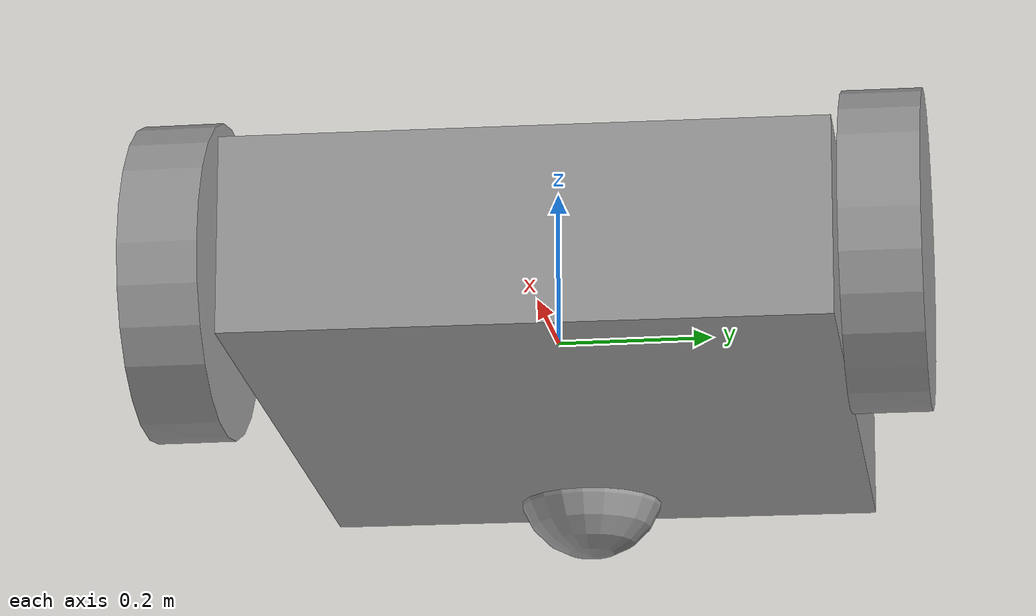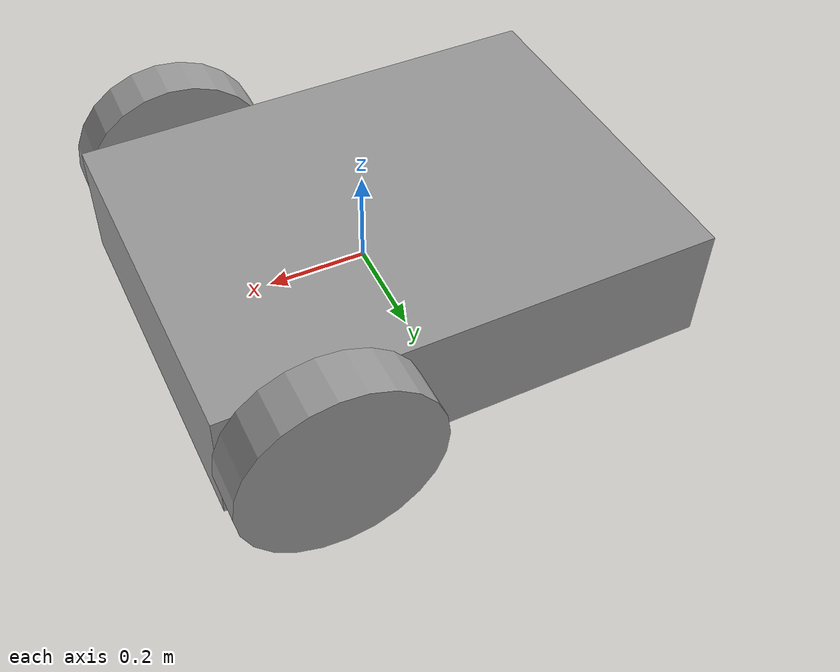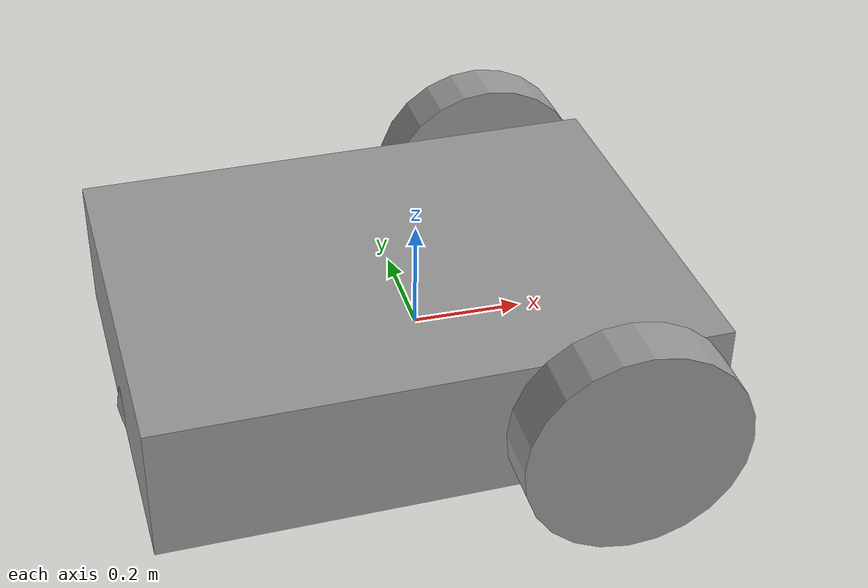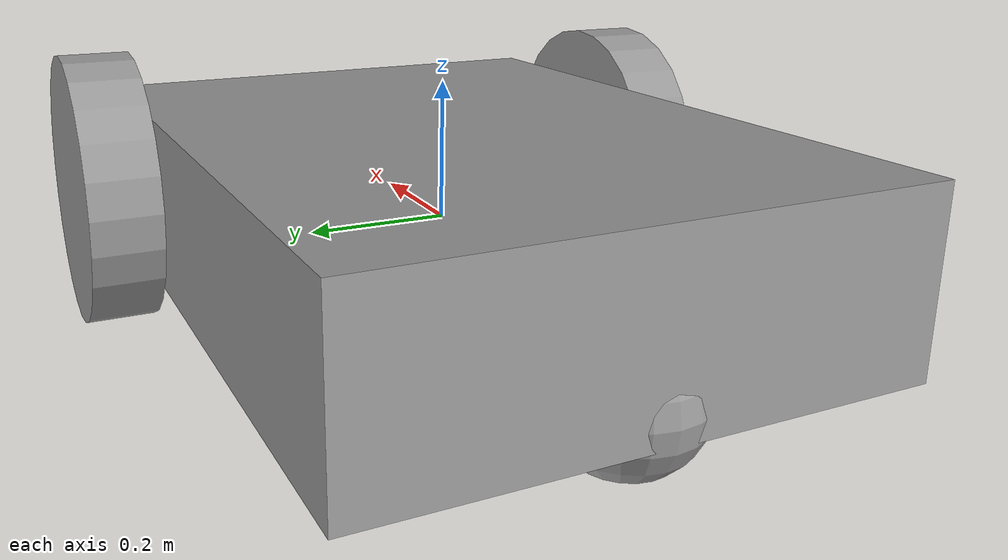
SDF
<?xml version='1.0'?>
<sdf version='1.6'>
  <model name='three_wheel_robot'>
    <link name='link_2'>
      <pose frame=''>-0.049314 0.004724 0.023129 0 -0 0.021569</pose>
      <inertial>
        <mass>1</mass>
        <inertia>
          <ixx>0.166667</ixx>
          <ixy>0</ixy>
          <ixz>0</ixz>
          <iyy>0.166667</iyy>
          <iyz>0</iyz>
          <izz>0.166667</izz>
        </inertia>
        <pose frame=''>0 0 0 0 -0 0</pose>
      </inertial>
      <gravity>1</gravity>
      <self_collide>0</self_collide>
      <kinematic>0</kinematic>
      <visual name='visual'>
        <pose frame=''>0 0 0 0 -0 0</pose>
        <geometry>
          <box>
            <size>1 0.75 0.25</size>
          </box>
        </geometry>
        <material>
          <lighting>1</lighting>
          <script>
            <uri>file://media/materials/scripts/gazebo.material</uri>
            <name>Gazebo/Grey</name>
          </script>
          <shader type='pixel'>
            <normal_map>__default__</normal_map>
          </shader>
          <ambient>0.3 0.3 0.3 1</ambient>
          <diffuse>0.7 0.7 0.7 1</diffuse>
          <specular>0.01 0.01 0.01 1</specular>
          <emissive>0 0 0 1</emissive>
        </material>
        <transparency>0</transparency>
        <cast_shadows>1</cast_shadows>
      </visual>
      <collision name='collision'>
        <laser_retro>0</laser_retro>
        <max_contacts>10</max_contacts>
        <pose frame=''>0 0 0 0 -0 0</pose>
        <geometry>
          <box>
            <size>1 0.75 0.25</size>
          </box>
        </geometry>
        <surface>
          <friction>
            <ode>
              <mu>1</mu>
              <mu2>1</mu2>
              <fdir1>0 0 0</fdir1>
              <slip1>0</slip1>
              <slip2>0</slip2>
            </ode>
            <torsional>
              <coefficient>1</coefficient>
              <patch_radius>0</patch_radius>
              <surface_radius>0</surface_radius>
              <use_patch_radius>1</use_patch_radius>
              <ode>
                <slip>0</slip>
              </ode>
            </torsional>
          </friction>
          <bounce>
            <restitution_coefficient>0</restitution_coefficient>
            <threshold>1e+06</threshold>
          </bounce>
          <contact>
            <collide_without_contact>0</collide_without_contact>
            <collide_without_contact_bitmask>1</collide_without_contact_bitmask>
            <collide_bitmask>1</collide_bitmask>
            <ode>
              <soft_cfm>0</soft_cfm>
              <soft_erp>0.2</soft_erp>
              <kp>1e+13</kp>
              <kd>1</kd>
              <max_vel>0.01</max_vel>
              <min_depth>0</min_depth>
            </ode>
            <bullet>
              <split_impulse>1</split_impulse>
              <split_impulse_penetration_threshold>-0.01</split_impulse_penetration_threshold>
              <soft_cfm>0</soft_cfm>
              <soft_erp>0.2</soft_erp>
              <kp>1e+13</kp>
              <kd>1</kd>
            </bullet>
          </contact>
        </surface>
      </collision>
    </link>
    <link name='link_3'>
      <pose frame=''>0.253169 0.443595 0.030612 1.55489 1.54692 3.14159</pose>
      <inertial>
        <mass>1</mass>
        <inertia>
          <ixx>0.145833</ixx>
          <ixy>0</ixy>
          <ixz>0</ixz>
          <iyy>0.145833</iyy>
          <iyz>0</iyz>
          <izz>0.125</izz>
        </inertia>
        <pose frame=''>0 0 0 0 -0 0</pose>
      </inertial>
      <gravity>1</gravity>
      <self_collide>0</self_collide>
      <kinematic>0</kinematic>
      <visual name='visual'>
        <pose frame=''>0 0 0 0 -0 0</pose>
        <geometry>
          <cylinder>
            <radius>0.2</radius>
            <length>0.1</length>
          </cylinder>
        </geometry>
        <material>
          <lighting>1</lighting>
          <script>
            <uri>file://media/materials/scripts/gazebo.material</uri>
            <name>Gazebo/Grey</name>
          </script>
          <shader type='pixel'>
            <normal_map>__default__</normal_map>
          </shader>
          <ambient>0.3 0.3 0.3 1</ambient>
          <diffuse>0.7 0.7 0.7 1</diffuse>
          <specular>0.01 0.01 0.01 1</specular>
          <emissive>0 0 0 1</emissive>
        </material>
        <transparency>0</transparency>
        <cast_shadows>1</cast_shadows>
      </visual>
      <collision name='collision'>
        <laser_retro>0</laser_retro>
        <max_contacts>10</max_contacts>
        <pose frame=''>0 0 0 0 -0 0</pose>
        <geometry>
          <cylinder>
            <radius>0.2</radius>
            <length>0.1</length>
          </cylinder>
        </geometry>
        <surface>
          <friction>
            <ode>
              <mu>1</mu>
              <mu2>1</mu2>
              <fdir1>0 0 0</fdir1>
              <slip1>0</slip1>
              <slip2>0</slip2>
            </ode>
            <torsional>
              <coefficient>1</coefficient>
              <patch_radius>0</patch_radius>
              <surface_radius>0</surface_radius>
              <use_patch_radius>1</use_patch_radius>
              <ode>
                <slip>0</slip>
              </ode>
            </torsional>
          </friction>
          <bounce>
            <restitution_coefficient>0</restitution_coefficient>
            <threshold>1e+06</threshold>
          </bounce>
          <contact>
            <collide_without_contact>0</collide_without_contact>
            <collide_without_contact_bitmask>1</collide_without_contact_bitmask>
            <collide_bitmask>1</collide_bitmask>
            <ode>
              <soft_cfm>0</soft_cfm>
              <soft_erp>0.2</soft_erp>
              <kp>1e+13</kp>
              <kd>1</kd>
              <max_vel>0.01</max_vel>
              <min_depth>0</min_depth>
            </ode>
            <bullet>
              <split_impulse>1</split_impulse>
              <split_impulse_penetration_threshold>-0.01</split_impulse_penetration_threshold>
              <soft_cfm>0</soft_cfm>
              <soft_erp>0.2</soft_erp>
              <kp>1e+13</kp>
              <kd>1</kd>
            </bullet>
          </contact>
        </surface>
      </collision>
    </link>
    <link name='link_3_clone'>
      <pose frame=''>0.253432 -0.433043 0.023129 1.58116 1.54692 3.14159</pose>
      <inertial>
        <mass>1</mass>
        <inertia>
          <ixx>0.145833</ixx>
          <ixy>0</ixy>
          <ixz>0</ixz>
          <iyy>0.145833</iyy>
          <iyz>0</iyz>
          <izz>0.125</izz>
        </inertia>
        <pose frame=''>0 0 0 0 -0 0</pose>
      </inertial>
      <self_collide>0</self_collide>
      <kinematic>0</kinematic>
      <gravity>1</gravity>
      <visual name='visual'>
        <pose frame=''>0 0 0 0 -0 0</pose>
        <geometry>
          <cylinder>
            <radius>0.2</radius>
            <length>0.1</length>
          </cylinder>
        </geometry>
        <material>
          <lighting>1</lighting>
          <script>
            <uri>file://media/materials/scripts/gazebo.material</uri>
            <name>Gazebo/Grey</name>
          </script>
          <shader type='pixel'>
            <normal_map>__default__</normal_map>
          </shader>
          <ambient>0.3 0.3 0.3 1</ambient>
          <diffuse>0.7 0.7 0.7 1</diffuse>
          <specular>0.01 0.01 0.01 1</specular>
          <emissive>0 0 0 1</emissive>
        </material>
        <transparency>0</transparency>
        <cast_shadows>1</cast_shadows>
      </visual>
      <collision name='collision'>
        <laser_retro>0</laser_retro>
        <max_contacts>10</max_contacts>
        <pose frame=''>0 0 0 0 -0 0</pose>
        <geometry>
          <cylinder>
            <radius>0.2</radius>
            <length>0.1</length>
          </cylinder>
        </geometry>
        <surface>
          <friction>
            <ode>
              <mu>1</mu>
              <mu2>1</mu2>
              <fdir1>0 0 0</fdir1>
              <slip1>0</slip1>
              <slip2>0</slip2>
            </ode>
            <torsional>
              <coefficient>1</coefficient>
              <patch_radius>0</patch_radius>
              <surface_radius>0</surface_radius>
              <use_patch_radius>1</use_patch_radius>
              <ode>
                <slip>0</slip>
              </ode>
            </torsional>
          </friction>
          <bounce>
            <restitution_coefficient>0</restitution_coefficient>
            <threshold>1e+06</threshold>
          </bounce>
          <contact>
            <collide_without_contact>0</collide_without_contact>
            <collide_without_contact_bitmask>1</collide_without_contact_bitmask>
            <collide_bitmask>1</collide_bitmask>
            <ode>
              <soft_cfm>0</soft_cfm>
              <soft_erp>0.2</soft_erp>
              <kp>1e+13</kp>
              <kd>1</kd>
              <max_vel>0.01</max_vel>
              <min_depth>0</min_depth>
            </ode>
            <bullet>
              <split_impulse>1</split_impulse>
              <split_impulse_penetration_threshold>-0.01</split_impulse_penetration_threshold>
              <soft_cfm>0</soft_cfm>
              <soft_erp>0.2</soft_erp>
              <kp>1e+13</kp>
              <kd>1</kd>
            </bullet>
          </contact>
        </surface>
      </collision>
    </link>
    <link name='link_4'>
      <pose frame=''>-0.457286 -0.015276 -0.076871 0 -0 0</pose>
      <inertial>
        <mass>1</mass>
        <inertia>
          <ixx>0.1</ixx>
          <ixy>0</ixy>
          <ixz>0</ixz>
          <iyy>0.1</iyy>
          <iyz>0</iyz>
          <izz>0.1</izz>
        </inertia>
        <pose frame=''>0 0 0 0 -0 0</pose>
      </inertial>
      <gravity>1</gravity>
      <self_collide>0</self_collide>
      <kinematic>0</kinematic>
      <visual name='visual'>
        <pose frame=''>0 0 0 0 -0 0</pose>
        <geometry>
          <sphere>
            <radius>0.1</radius>
          </sphere>
        </geometry>
        <material>
          <lighting>1</lighting>
          <script>
            <uri>file://media/materials/scripts/gazebo.material</uri>
            <name>Gazebo/Grey</name>
          </script>
          <shader type='pixel'>
            <normal_map>__default__</normal_map>
          </shader>
          <ambient>0.3 0.3 0.3 1</ambient>
          <diffuse>0.7 0.7 0.7 1</diffuse>
          <specular>0.01 0.01 0.01 1</specular>
          <emissive>0 0 0 1</emissive>
        </material>
        <transparency>0</transparency>
        <cast_shadows>1</cast_shadows>
      </visual>
      <collision name='collision'>
        <laser_retro>0</laser_retro>
        <max_contacts>10</max_contacts>
        <pose frame=''>0 0 0 0 -0 0</pose>
        <geometry>
          <sphere>
            <radius>0.1</radius>
          </sphere>
        </geometry>
        <surface>
          <friction>
            <ode>
              <mu>1</mu>
              <mu2>1</mu2>
              <fdir1>0 0 0</fdir1>
              <slip1>0</slip1>
              <slip2>0</slip2>
            </ode>
            <torsional>
              <coefficient>1</coefficient>
              <patch_radius>0</patch_radius>
              <surface_radius>0</surface_radius>
              <use_patch_radius>1</use_patch_radius>
              <ode>
                <slip>0</slip>
              </ode>
            </torsional>
          </friction>
          <bounce>
            <restitution_coefficient>0</restitution_coefficient>
            <threshold>1e+06</threshold>
          </bounce>
          <contact>
            <collide_without_contact>0</collide_without_contact>
            <collide_without_contact_bitmask>1</collide_without_contact_bitmask>
            <collide_bitmask>1</collide_bitmask>
            <ode>
              <soft_cfm>0</soft_cfm>
              <soft_erp>0.2</soft_erp>
              <kp>1e+13</kp>
              <kd>1</kd>
              <max_vel>0.01</max_vel>
              <min_depth>0</min_depth>
            </ode>
            <bullet>
              <split_impulse>1</split_impulse>
              <split_impulse_penetration_threshold>-0.01</split_impulse_penetration_threshold>
              <soft_cfm>0</soft_cfm>
              <soft_erp>0.2</soft_erp>
              <kp>1e+13</kp>
              <kd>1</kd>
            </bullet>
          </contact>
        </surface>
      </collision>
    </link>
    <joint name='link_2_JOINT_0' type='revolute'>
      <parent>link_2</parent>
      <child>link_3</child>
      <pose frame=''>0 0 0 0 -0 0</pose>
      <axis>
        <xyz>0 0 1</xyz>
        <use_parent_model_frame>0</use_parent_model_frame>
        <limit>
          <lower>-1.79769e+308</lower>
          <upper>1.79769e+308</upper>
          <effort>-1</effort>
          <velocity>-1</velocity>
        </limit>
        <dynamics>
          <spring_reference>0</spring_reference>
          <spring_stiffness>0</spring_stiffness>
          <damping>0</damping>
        </dynamics>
      </axis>
      <physics>
        <ode>
          <limit>
            <cfm>0</cfm>
            <erp>0.2</erp>
          </limit>
          <suspension>
            <cfm>0</cfm>
            <erp>0.2</erp>
          </suspension>
        </ode>
      </physics>
    </joint>
    <joint name='link_2_JOINT_1' type='revolute'>
      <parent>link_2</parent>
      <child>link_3_clone</child>
      <pose frame=''>0 0 0 0 -0 0</pose>
      <axis>
        <xyz>0 0 1</xyz>
        <use_parent_model_frame>0</use_parent_model_frame>
        <limit>
          <lower>-1.79769e+308</lower>
          <upper>1.79769e+308</upper>
          <effort>-1</effort>
          <velocity>-1</velocity>
        </limit>
        <dynamics>
          <spring_reference>0</spring_reference>
          <spring_stiffness>0</spring_stiffness>
          <damping>0</damping>
        </dynamics>
      </axis>
      <physics>
        <ode>
          <limit>
            <cfm>0</cfm>
            <erp>0.2</erp>
          </limit>
          <suspension>
            <cfm>0</cfm>
            <erp>0.2</erp>
          </suspension>
        </ode>
      </physics>
    </joint>
    <joint name='link_2_JOINT_2' type='revolute'>
      <parent>link_2</parent>
      <child>link_4</child>
      <pose frame=''>0 0 0 0 -0 0</pose>
      <axis>
        <xyz>0 1 0</xyz>
        <use_parent_model_frame>0</use_parent_model_frame>
        <limit>
          <lower>-1.79769e+308</lower>
          <upper>1.79769e+308</upper>
          <effort>-1</effort>
          <velocity>-1</velocity>
        </limit>
        <dynamics>
          <spring_reference>0</spring_reference>
          <spring_stiffness>0</spring_stiffness>
          <damping>0</damping>
        </dynamics>
      </axis>
      <physics>
        <ode>
          <limit>
            <cfm>0</cfm>
            <erp>0.2</erp>
          </limit>
          <suspension>
            <cfm>0</cfm>
            <erp>0.2</erp>
          </suspension>
        </ode>
      </physics>
    </joint>
    <static>0</static>
    <allow_auto_disable>1</allow_auto_disable>
  </model>
</sdf>
